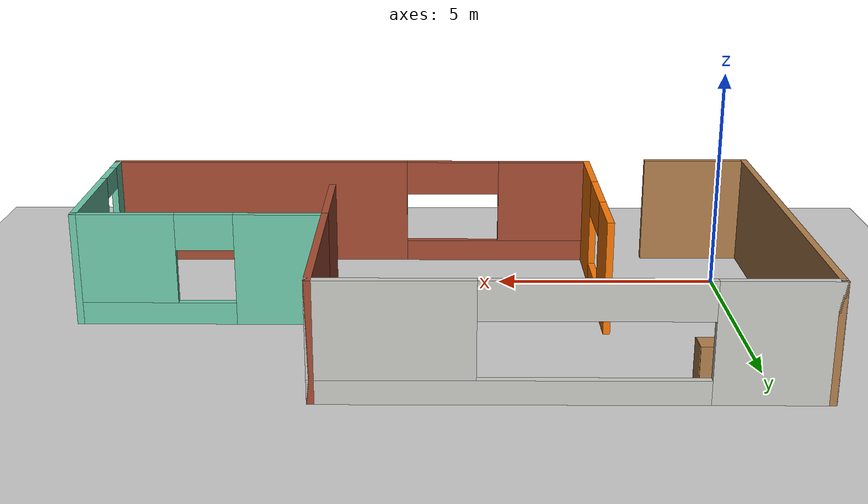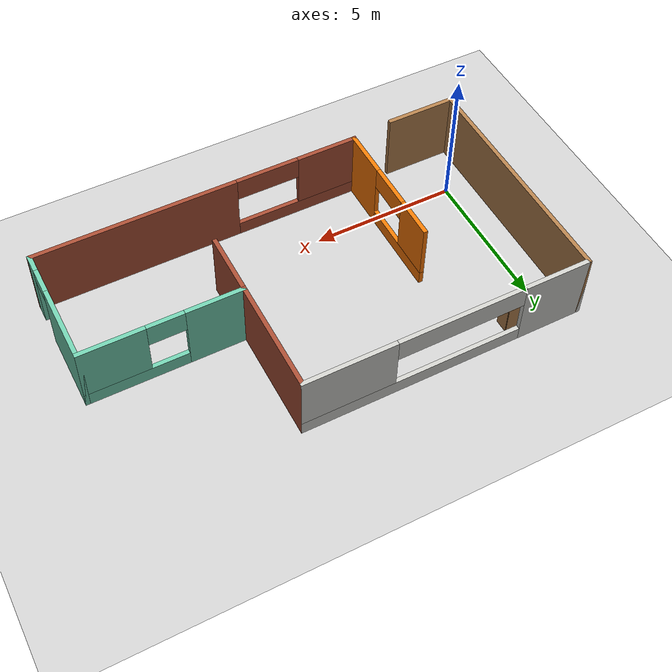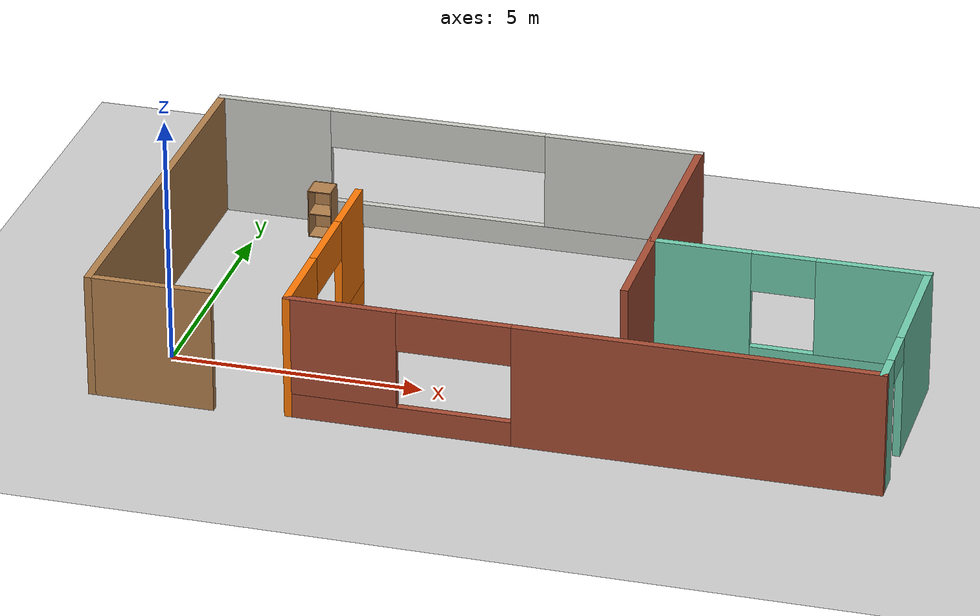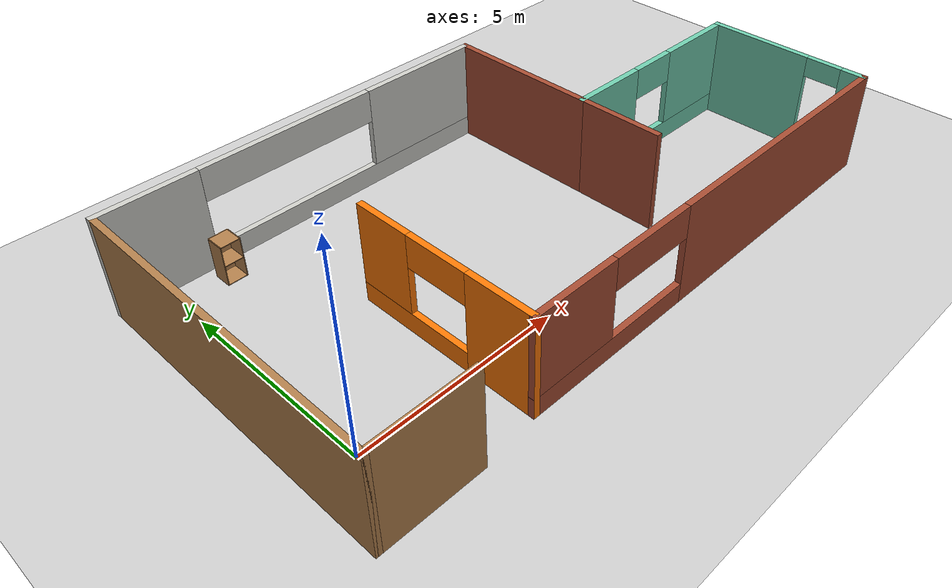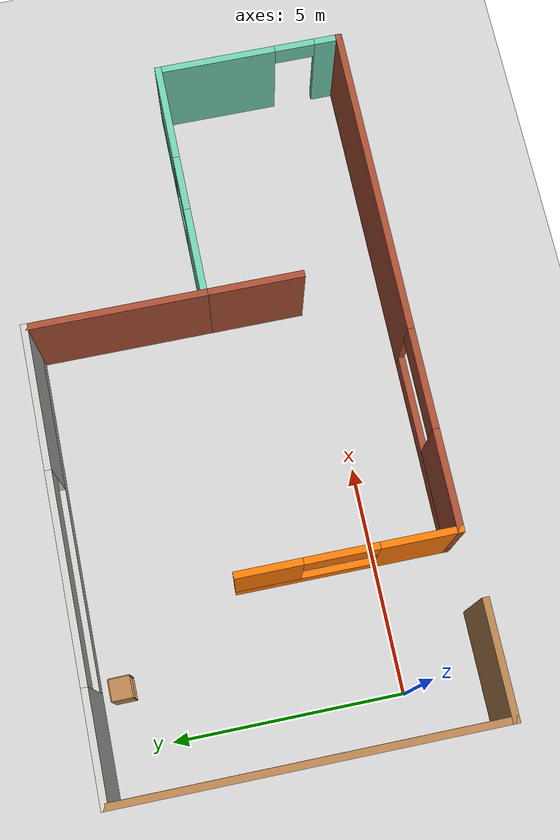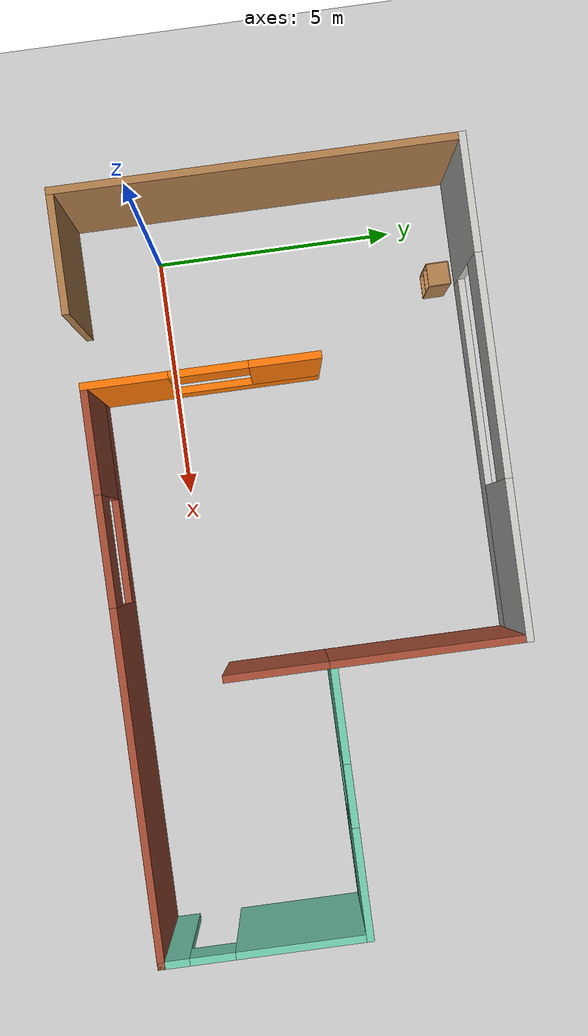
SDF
<sdf version="1.6">
 <world name="default">
  <model name="ground_plane">
   <static>1</static>
   <link name="link">
    <collision name="collision">
     <geometry><plane><normal>0 0 1</normal><size>100 100</size></plane></geometry>
     <surface><friction><ode><mu>100</mu><mu2>50</mu2></ode></friction></surface>
    </collision>
    <visual name="visual">
     <cast_shadows>0</cast_shadows>
     <geometry><plane><normal>0 0 1</normal><size>100 100</size></plane></geometry>
     <material>
      <script><uri>file://media/materials/scripts/gazebo.material</uri><name>Gazebo/Grey</name></script>
     </material>
    </visual>
   </link>
  </model>
  <model name="my_room">
   <pose>6.60739 2.31299 0 0 -0 0</pose>
   <link name="Wall_1">
    <pose>-2.675 4.05 0 0 -0 0</pose>
    <visual name="Wall_1_Visual_0">
     <pose>-3.81694 0 1.25 0 -0 0</pose>
     <geometry><box><size>2.36613 0.15 2.5</size></box></geometry>
     <material>
      <script><uri>file://media/materials/scripts/gazebo.material</uri><name>Gazebo/CeilingTiled</name></script>
      <ambient>0.666667 0.333333 1 1</ambient>
     </material>
     <meta><layer>0</layer></meta>
    </visual>
    <collision name="Wall_1_Collision_0">
     <geometry><box><size>2.36613 0.15 2.5</size></box></geometry>
     <pose>-3.81694 0 1.25 0 -0 0</pose>
    </collision>
    <visual name="Wall_1_Visual_1">
     <pose>1.18306 0 0.25 0 -0 0</pose>
     <geometry><box><size>7.63387 0.15 0.5</size></box></geometry>
     <material>
      <script><uri>file://media/materials/scripts/gazebo.material</uri><name>Gazebo/CeilingTiled</name></script>
      <ambient>0.666667 0.333333 1 1</ambient>
     </material>
     <meta><layer>0</layer></meta>
    </visual>
    <collision name="Wall_1_Collision_1">
     <geometry><box><size>7.63387 0.15 0.5</size></box></geometry>
     <pose>1.18306 0 0.25 0 -0 0</pose>
    </collision>
    <visual name="Wall_1_Visual_2">
     <pose>3.39806 0 1.5 0 -0 0</pose>
     <geometry><box><size>3.20387 0.15 2</size></box></geometry>
     <material>
      <script><uri>file://media/materials/scripts/gazebo.material</uri><name>Gazebo/CeilingTiled</name></script>
      <ambient>0.666667 0.333333 1 1</ambient>
     </material>
     <meta><layer>0</layer></meta>
    </visual>
    <collision name="Wall_1_Collision_2">
     <geometry><box><size>3.20387 0.15 2</size></box></geometry>
     <pose>3.39806 0 1.5 0 -0 0</pose>
    </collision>
    <visual name="Wall_1_Visual_3">
     <pose>-0.418873 0 2.1 0 -0 0</pose>
     <geometry><box><size>4.43 0.15 0.8</size></box></geometry>
     <material>
      <script><uri>file://media/materials/scripts/gazebo.material</uri><name>Gazebo/CeilingTiled</name></script>
      <ambient>0.666667 0.333333 1 1</ambient>
     </material>
     <meta><layer>0</layer></meta>
    </visual>
    <collision name="Wall_1_Collision_3">
     <geometry><box><size>4.43 0.15 0.8</size></box></geometry>
     <pose>-0.418873 0 2.1 0 -0 0</pose>
    </collision>
   </link>
   <link name="Wall_15">
    <pose>-3.75 -1.6 0 0 -0 1.5708</pose>
    <visual name="Wall_15_Visual_0">
     <pose>-1.50843 0 1.25 0 -0 0</pose>
     <geometry><box><size>1.73314 0.15 2.5</size></box></geometry>
     <material>
      <script><uri>file://media/materials/scripts/gazebo.material</uri><name>Gazebo/Grey</name></script>
      <ambient>0.996078 0.47451 0.0196078 1</ambient>
     </material>
     <meta><layer>0</layer></meta>
    </visual>
    <collision name="Wall_15_Collision_0">
     <geometry><box><size>1.73314 0.15 2.5</size></box></geometry>
     <pose>-1.50843 0 1.25 0 -0 0</pose>
    </collision>
    <visual name="Wall_15_Visual_1">
     <pose>0.866573 0 0.25 0 -0 0</pose>
     <geometry><box><size>3.01686 0.15 0.5</size></box></geometry>
     <material>
      <script><uri>file://media/materials/scripts/gazebo.material</uri><name>Gazebo/Grey</name></script>
      <ambient>0.996078 0.47451 0.0196078 1</ambient>
     </material>
     <meta><layer>0</layer></meta>
    </visual>
    <collision name="Wall_15_Collision_1">
     <geometry><box><size>3.01686 0.15 0.5</size></box></geometry>
     <pose>0.866573 0 0.25 0 -0 0</pose>
    </collision>
    <visual name="Wall_15_Visual_2">
     <pose>1.65755 0 1.5 0 -0 0</pose>
     <geometry><box><size>1.43491 0.15 2</size></box></geometry>
     <material>
      <script><uri>file://media/materials/scripts/gazebo.material</uri><name>Gazebo/Grey</name></script>
      <ambient>0.996078 0.47451 0.0196078 1</ambient>
     </material>
     <meta><layer>0</layer></meta>
    </visual>
    <collision name="Wall_15_Collision_2">
     <geometry><box><size>1.43491 0.15 2</size></box></geometry>
     <pose>1.65755 0 1.5 0 -0 0</pose>
    </collision>
    <visual name="Wall_15_Visual_3">
     <pose>0.14912 0 2.1 0 -0 0</pose>
     <geometry><box><size>1.58195 0.15 0.8</size></box></geometry>
     <material>
      <script><uri>file://media/materials/scripts/gazebo.material</uri><name>Gazebo/Grey</name></script>
      <ambient>0.996078 0.47451 0.0196078 1</ambient>
     </material>
     <meta><layer>0</layer></meta>
    </visual>
    <collision name="Wall_15_Collision_3">
     <geometry><box><size>1.58195 0.15 0.8</size></box></geometry>
     <pose>0.14912 0 2.1 0 -0 0</pose>
    </collision>
   </link>
   <link name="Wall_17">
    <collision name="Wall_17_Collision">
     <geometry><box><size>8.25 0.15 2.5</size></box></geometry>
     <pose>0 0 1.25 0 -0 0</pose>
    </collision>
    <visual name="Wall_17_Visual">
     <pose>0 0 1.25 0 -0 0</pose>
     <geometry><box><size>8.25 0.15 2.5</size></box></geometry>
     <material>
      <script><uri>file://media/materials/scripts/gazebo.material</uri><name>Gazebo/Wood</name></script>
      <ambient>0.435294 0.796078 0.67451 1</ambient>
     </material>
     <meta><layer>0</layer></meta>
    </visual>
    <pose>-7.6 0 0 0 0 -1.5708</pose>
   </link>
   <link name="Wall_2">
    <collision name="Wall_2_Collision">
     <geometry><box><size>4 0.15 2.5</size></box></geometry>
     <pose>0 0 1.25 0 -0 0</pose>
    </collision>
    <visual name="Wall_2_Visual">
     <pose>0 0 1.25 0 -0 0</pose>
     <geometry><box><size>4 0.15 2.5</size></box></geometry>
     <material>
      <script><uri>file://media/materials/scripts/gazebo.material</uri><name>Gazebo/Bricks</name></script>
      <ambient>1 1 1 1</ambient>
     </material>
     <meta><layer>0</layer></meta>
    </visual>
    <pose>2.25 2.125 0 0 0 -1.5708</pose>
   </link>
   <link name="Wall_21">
    <collision name="Wall_21_Collision">
     <geometry><box><size>2.5 0.15 2.5</size></box></geometry>
     <pose>0 0 1.25 0 -0 0</pose>
    </collision>
    <visual name="Wall_21_Visual">
     <pose>0 0 1.25 0 -0 0</pose>
     <geometry><box><size>2.5 0.15 2.5</size></box></geometry>
     <material>
      <script><uri>file://media/materials/scripts/gazebo.material</uri><name>Gazebo/Wood</name></script>
      <ambient>1 1 1 1</ambient>
     </material>
     <meta><layer>0</layer></meta>
    </visual>
    <pose>-6.425 -4.05 0 0 -0 0</pose>
   </link>
   <link name="Wall_3">
    <pose>4.925 0.2 0 0 -0 0</pose>
    <visual name="Wall_3_Visual_0">
     <pose>-1.73801 0 1.25 0 -0 0</pose>
     <geometry><box><size>2.02399 0.15 2.5</size></box></geometry>
     <material>
      <script><uri>file://media/materials/scripts/gazebo.material</uri><name>Gazebo/Grey</name></script>
      <ambient>0.435294 0.796078 0.67451 1</ambient>
     </material>
     <meta><layer>0</layer></meta>
    </visual>
    <collision name="Wall_3_Collision_0">
     <geometry><box><size>2.02399 0.15 2.5</size></box></geometry>
     <pose>-1.73801 0 1.25 0 -0 0</pose>
    </collision>
    <visual name="Wall_3_Visual_1">
     <pose>1.01199 0 0.25 0 -0 0</pose>
     <geometry><box><size>3.47601 0.15 0.5</size></box></geometry>
     <material>
      <script><uri>file://media/materials/scripts/gazebo.material</uri><name>Gazebo/Grey</name></script>
      <ambient>0.435294 0.796078 0.67451 1</ambient>
     </material>
     <meta><layer>0</layer></meta>
    </visual>
    <collision name="Wall_3_Collision_1">
     <geometry><box><size>3.47601 0.15 0.5</size></box></geometry>
     <pose>1.01199 0 0.25 0 -0 0</pose>
    </collision>
    <visual name="Wall_3_Visual_2">
     <pose>1.63628 0 1.5 0 -0 0</pose>
     <geometry><box><size>2.22744 0.15 2</size></box></geometry>
     <material>
      <script><uri>file://media/materials/scripts/gazebo.material</uri><name>Gazebo/Grey</name></script>
      <ambient>0.435294 0.796078 0.67451 1</ambient>
     </material>
     <meta><layer>0</layer></meta>
    </visual>
    <collision name="Wall_3_Collision_2">
     <geometry><box><size>2.22744 0.15 2</size></box></geometry>
     <pose>1.63628 0 1.5 0 -0 0</pose>
    </collision>
    <visual name="Wall_3_Visual_3">
     <pose>-0.101725 0 2.1 0 -0 0</pose>
     <geometry><box><size>1.24858 0.15 0.8</size></box></geometry>
     <material>
      <script><uri>file://media/materials/scripts/gazebo.material</uri><name>Gazebo/Grey</name></script>
      <ambient>0.435294 0.796078 0.67451 1</ambient>
     </material>
     <meta><layer>0</layer></meta>
    </visual>
    <collision name="Wall_3_Collision_3">
     <geometry><box><size>1.24858 0.15 0.8</size></box></geometry>
     <pose>-0.101725 0 2.1 0 -0 0</pose>
    </collision>
   </link>
   <link name="Wall_4">
    <pose>7.6 -1.85 0 0 0 -1.5708</pose>
    <visual name="Wall_4_Visual_0">
     <pose>-0.769041 0 1.25 0 -0 0</pose>
     <geometry><box><size>2.71192 0.15 2.5</size></box></geometry>
     <material>
      <script><uri>file://media/materials/scripts/gazebo.material</uri><name>Gazebo/Grey</name></script>
      <ambient>0.435294 0.796078 0.67451 1</ambient>
     </material>
     <meta><layer>0</layer></meta>
    </visual>
    <collision name="Wall_4_Collision_0">
     <geometry><box><size>2.71192 0.15 2.5</size></box></geometry>
     <pose>-0.769041 0 1.25 0 -0 0</pose>
    </collision>
    <visual name="Wall_4_Visual_1">
     <pose>1.80596 0 1.25 0 -0 0</pose>
     <geometry><box><size>0.638081 0.15 2.5</size></box></geometry>
     <material>
      <script><uri>file://media/materials/scripts/gazebo.material</uri><name>Gazebo/Grey</name></script>
      <ambient>0.435294 0.796078 0.67451 1</ambient>
     </material>
     <meta><layer>0</layer></meta>
    </visual>
    <collision name="Wall_4_Collision_1">
     <geometry><box><size>0.638081 0.15 2.5</size></box></geometry>
     <pose>1.80596 0 1.25 0 -0 0</pose>
    </collision>
    <visual name="Wall_4_Visual_2">
     <pose>1.03692 0 2.25 0 -0 0</pose>
     <geometry><box><size>0.9 0.15 0.5</size></box></geometry>
     <material>
      <script><uri>file://media/materials/scripts/gazebo.material</uri><name>Gazebo/Grey</name></script>
      <ambient>0.435294 0.796078 0.67451 1</ambient>
     </material>
     <meta><layer>0</layer></meta>
    </visual>
    <collision name="Wall_4_Collision_2">
     <geometry><box><size>0.9 0.15 0.5</size></box></geometry>
     <pose>1.03692 0 2.25 0 -0 0</pose>
    </collision>
   </link>
   <link name="Wall_5">
    <pose>1.925 -3.9 0 0 -0 3.14159</pose>
    <visual name="Wall_5_Visual_0">
     <pose>-2.20932 0 1.25 0 -0 0</pose>
     <geometry><box><size>7.08135 0.15 2.5</size></box></geometry>
     <material>
      <script><uri>file://media/materials/scripts/gazebo.material</uri><name>Gazebo/Bricks</name></script>
      <ambient>1 1 1 1</ambient>
     </material>
     <meta><layer>0</layer></meta>
    </visual>
    <collision name="Wall_5_Collision_0">
     <geometry><box><size>7.08135 0.15 2.5</size></box></geometry>
     <pose>-2.20932 0 1.25 0 -0 0</pose>
    </collision>
    <visual name="Wall_5_Visual_1">
     <pose>3.54068 0 0.25 0 -0 0</pose>
     <geometry><box><size>4.41865 0.15 0.5</size></box></geometry>
     <material>
      <script><uri>file://media/materials/scripts/gazebo.material</uri><name>Gazebo/Bricks</name></script>
      <ambient>1 1 1 1</ambient>
     </material>
     <meta><layer>0</layer></meta>
    </visual>
    <collision name="Wall_5_Collision_1">
     <geometry><box><size>4.41865 0.15 0.5</size></box></geometry>
     <pose>3.54068 0 0.25 0 -0 0</pose>
    </collision>
    <visual name="Wall_5_Visual_2">
     <pose>4.64744 0 1.5 0 -0 0</pose>
     <geometry><box><size>2.20512 0.15 2</size></box></geometry>
     <material>
      <script><uri>file://media/materials/scripts/gazebo.material</uri><name>Gazebo/Bricks</name></script>
      <ambient>1 1 1 1</ambient>
     </material>
     <meta><layer>0</layer></meta>
    </visual>
    <collision name="Wall_5_Collision_2">
     <geometry><box><size>2.20512 0.15 2</size></box></geometry>
     <pose>4.64744 0 1.5 0 -0 0</pose>
    </collision>
    <visual name="Wall_5_Visual_3">
     <pose>2.43811 0 2.1 0 -0 0</pose>
     <geometry><box><size>2.21352 0.15 0.8</size></box></geometry>
     <material>
      <script><uri>file://media/materials/scripts/gazebo.material</uri><name>Gazebo/Bricks</name></script>
      <ambient>1 1 1 1</ambient>
     </material>
     <meta><layer>0</layer></meta>
    </visual>
    <collision name="Wall_5_Collision_3">
     <geometry><box><size>2.21352 0.15 0.8</size></box></geometry>
     <pose>2.43811 0 2.1 0 -0 0</pose>
    </collision>
   </link>
   <link name="Wall_7">
    <collision name="Wall_7_Collision">
     <geometry><box><size>2.25 0.15 2.5</size></box></geometry>
     <pose>0 0 1.25 0 -0 0</pose>
    </collision>
    <visual name="Wall_7_Visual">
     <pose>0 0 1.25 0 -0 0</pose>
     <geometry><box><size>2.25 0.15 2.5</size></box></geometry>
     <material>
      <script><uri>file://media/materials/scripts/gazebo.material</uri><name>Gazebo/Bricks</name></script>
      <ambient>1 1 1 1</ambient>
     </material>
     <meta><layer>0</layer></meta>
    </visual>
    <pose>2.25 -0.85 0 0 0 -1.5708</pose>
   </link>
   <static>1</static>
  </model>
  <model name="cabinet">
   <static>1</static>
   <link name="cabinet_bottom_plate">
    <inertial>
     <pose>0 0 -1 0 -0 0</pose>
     <inertia><ixx>2.05</ixx><ixy>0</ixy><ixz>0</ixz><iyy>2.05</iyy><iyz>0</iyz><izz>2.05</izz></inertia>
     <mass>25</mass>
    </inertial>
    <collision name="cabinet_bottom_plate_geom">
     <pose>0 0 0.01 0 -0 0</pose>
     <geometry><box><size>0.45 0.45 0.02</size></box></geometry>
    </collision>
    <visual name="cabinet_bottom_plate_geom_visual">
     <pose>0 0 0.01 0 -0 0</pose>
     <geometry><box><size>0.45 0.45 0.02</size></box></geometry>
     <material>
      <script><uri>file://media/materials/scripts/gazebo.material</uri><name>Gazebo/Wood</name></script>
     </material>
    </visual>
    <collision name="cabinet_bottom_plate_geom_cabinet_back_plate">
     <pose>0.235 0 0.51 0 -0 0</pose>
     <geometry><box><size>0.02 0.45 1.02</size></box></geometry>
    </collision>
    <visual name="cabinet_bottom_plate_geom_cabinet_back_plate_visual">
     <pose>0.235 0 0.51 0 -0 0</pose>
     <geometry><box><size>0.02 0.45 1.02</size></box></geometry>
     <material>
      <script><uri>file://media/materials/scripts/gazebo.material</uri><name>Gazebo/Wood</name></script>
     </material>
    </visual>
    <collision name="cabinet_bottom_plate_geom_cabinet_left_plate">
     <pose>0 0.235 0.51 0 -0 0</pose>
     <geometry><box><size>0.45 0.02 1.02</size></box></geometry>
    </collision>
    <visual name="cabinet_bottom_plate_geom_cabinet_left_plate_visual">
     <pose>0 0.235 0.51 0 -0 0</pose>
     <geometry><box><size>0.45 0.02 1.02</size></box></geometry>
     <material>
      <script><uri>file://media/materials/scripts/gazebo.material</uri><name>Gazebo/Wood</name></script>
     </material>
    </visual>
    <collision name="cabinet_bottom_plate_geom_cabinet_middle_plate">
     <pose>0 0 0.51 0 -0 0</pose>
     <geometry><box><size>0.45 0.45 0.02</size></box></geometry>
    </collision>
    <visual name="cabinet_bottom_plate_geom_cabinet_middle_plate_visual">
     <pose>0 0 0.51 0 -0 0</pose>
     <geometry><box><size>0.45 0.45 0.02</size></box></geometry>
     <material>
      <script><uri>file://media/materials/scripts/gazebo.material</uri><name>Gazebo/Wood</name></script>
     </material>
    </visual>
    <collision name="cabinet_bottom_plate_geom_cabinet_right_plate">
     <pose>0 -0.235 0.51 0 -0 0</pose>
     <geometry><box><size>0.45 0.02 1.02</size></box></geometry>
    </collision>
    <visual name="cabinet_bottom_plate_geom_cabinet_right_plate_visual">
     <pose>0 -0.235 0.51 0 -0 0</pose>
     <geometry><box><size>0.45 0.02 1.02</size></box></geometry>
     <material>
      <script><uri>file://media/materials/scripts/gazebo.material</uri><name>Gazebo/Wood</name></script>
     </material>
    </visual>
    <collision name="cabinet_bottom_plate_geom_cabinet_top_plate">
     <pose>0 0 1.01 0 -0 0</pose>
     <geometry><box><size>0.45 0.45 0.02</size></box></geometry>
    </collision>
    <visual name="cabinet_bottom_plate_geom_cabinet_top_plate_visual">
     <pose>0 0 1.01 0 -0 0</pose>
     <geometry><box><size>0.45 0.45 0.02</size></box></geometry>
     <material>
      <script><uri>file://media/materials/scripts/gazebo.material</uri><name>Gazebo/Wood</name></script>
     </material>
    </visual>
   </link>
   <pose>1.2534 5.79985 0 0 -0 1.58077</pose>
  </model>
 </world>
</sdf>
